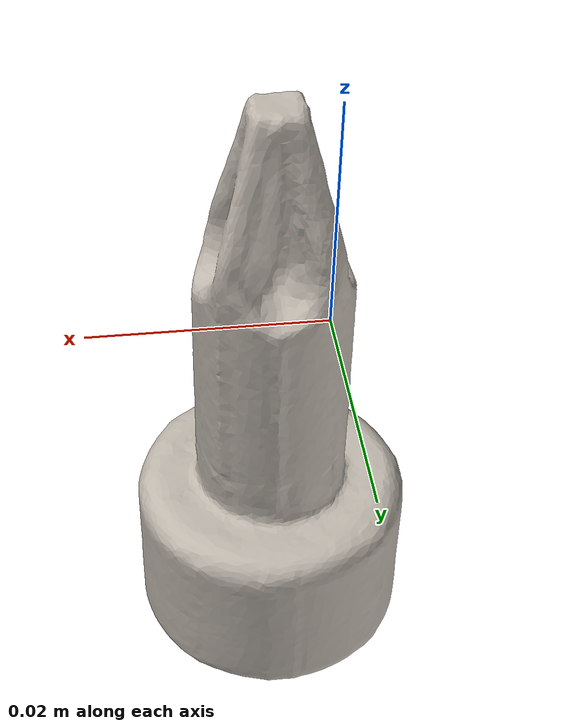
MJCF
<mujoco model="bread">
  <asset>
    <mesh file="nontextured.stl" name="obj_mesh" scale="0.8 0.8 0.8"/>
    <texture file="../../../../../textures/bread.png" type="2d" name="tex-bread" />
    <material name="bread" reflectance="0.7" texrepeat="15 15" texture="tex-bread" texuniform="true"/>
  </asset>
  <worldbody>
    <body>
      <body name="collision">
        <geom pos="0.0224 -0.0015270000000000006 -0.033131999999999995" mesh="obj_mesh" type="mesh" solimp="0.998 0.998 0.001" solref="0.001 1" density="50" friction="0.95 0.3 0.1"  material="bread" group="1" condim="4"/>
      </body>
      <body name="visual">
        <geom pos="0.0224 -0.0015270000000000006 -0.033131999999999995" mesh="obj_mesh" type="mesh" material="bread"  conaffinity="0" contype="0"  group="0" mass="0.0001"/>
        <geom pos="0.0224 -0.0015270000000000006 -0.033131999999999995" mesh="obj_mesh" type="mesh" material="bread"  conaffinity="0" contype="0"  group="1" mass="0.0001"/>
      </body>
      <site rgba="0 0 0 0" size="0.005" pos="0 0 -0.033206" name="bottom_site"/>
      <site rgba="0 0 0 0" size="0.005" pos="0 0 0.033206" name="top_site"/>
      <site rgba="0 0 0 0" size="0.005" pos="0.015335999999999999 0.015358 0.033206" name="horizontal_radius_site"/>
    </body>
  </worldbody>
</mujoco>
